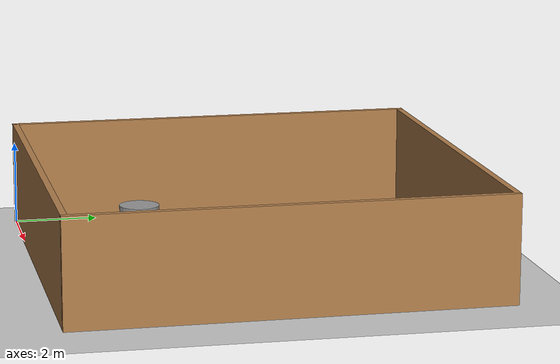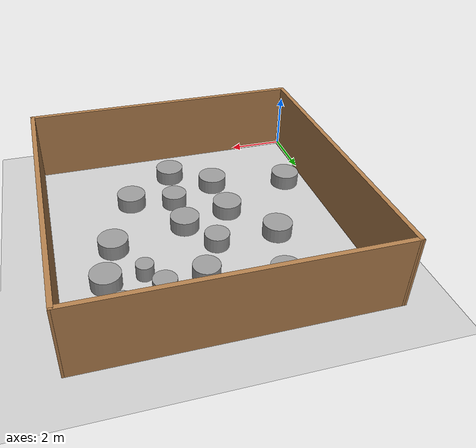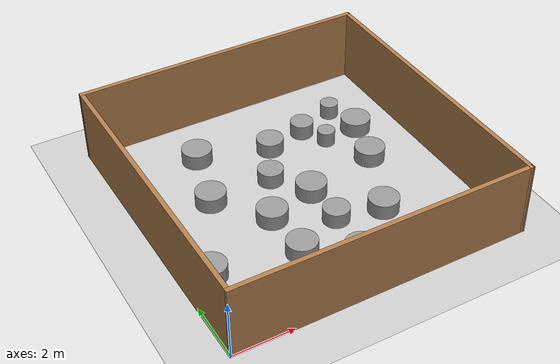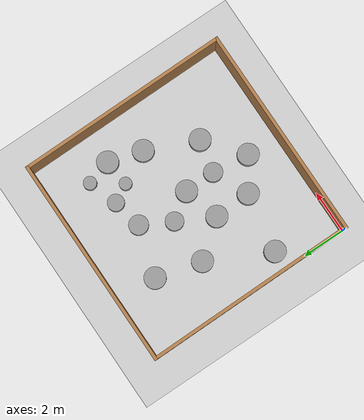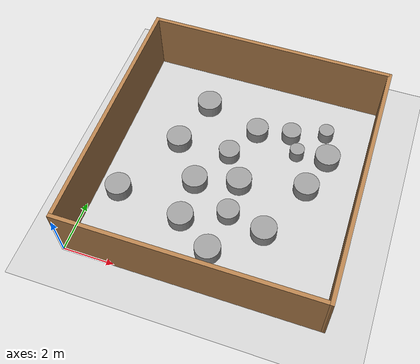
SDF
<sdf version="1.6">
 <world name="default">
  <light name="sun" type="directional">
   <pose>0 0 10 0 -0 0</pose>
   <diffuse>0.8 0.8 0.8 1</diffuse>
   <specular>0.2 0.2 0.2 1</specular>
   <attenuation>
    <range>1000</range>
    <constant>0.9</constant>
    <linear>0.01</linear>
    <quadratic>0.001</quadratic>
   </attenuation>
   <direction>-0.5 0.1 -0.9</direction>
  </light>
  <model name="ground_plane">
   <static>1</static>
   <link name="link">
    <collision name="collision">
     <geometry><plane><normal>0 0 1</normal><size>100 100</size></plane></geometry>
     <surface>
      <contact><collide_bitmask>65535</collide_bitmask></contact>
      <friction><ode><mu>100</mu><mu2>50</mu2></ode></friction>
     </surface>
    </collision>
    <visual name="visual">
     <cast_shadows>0</cast_shadows>
     <geometry><plane><normal>0 0 1</normal><size>100 100</size></plane></geometry>
     <material>
      <script><uri>file://media/materials/scripts/gazebo.material</uri><name>Gazebo/Grey</name></script>
     </material>
    </visual>
   </link>
  </model>
  <gravity>0 0 -9.8</gravity>
  <magnetic_field>6e-06 2.3e-05 -4.2e-05</magnetic_field>
  <atmosphere type="adiabatic"/>
  <physics name="default_physics" default="0" type="ode">
   <max_step_size>0.001</max_step_size>
   <real_time_factor>1</real_time_factor>
   <real_time_update_rate>1000</real_time_update_rate>
  </physics>
  <scene><ambient>0.4 0.4 0.4 1</ambient><background>0.7 0.7 0.7 1</background><shadows>1</shadows></scene>
  <audio><device>default</device></audio>
  <spherical_coordinates>
   <surface_model>EARTH_WGS84</surface_model>
   <latitude_deg>0</latitude_deg>
   <longitude_deg>0</longitude_deg>
   <elevation>0</elevation>
   <heading_deg>0</heading_deg>
  </spherical_coordinates>
  <model name="my_wall_01">
   <link name="Wall_0">
    <pose>0.034695 -4.92526 -0 0 0 -3.13923</pose>
    <visual name="Wall_0_Visual">
     <pose>0 0 1.25 0 -0 0</pose>
     <geometry><box><size>9.95377 0.15 2.5</size></box></geometry>
     <material>
      <script><uri>file://media/materials/scripts/gazebo.material</uri><name>Gazebo/Wood</name></script>
      <ambient>1 1 1 1</ambient>
     </material>
    </visual>
    <collision name="Wall_0_Collision">
     <pose>0 0 1.25 0 -0 0</pose>
     <geometry><box><size>9.95377 0.15 2.5</size></box></geometry>
     <surface>
      <friction>
       <ode><mu>1</mu><mu2>1</mu2><fdir1>0 0 0</fdir1><slip1>0</slip1><slip2>0</slip2></ode>
       <torsional>
        <coefficient>1</coefficient>
        <patch_radius>0</patch_radius>
        <surface_radius>0</surface_radius>
        <use_patch_radius>1</use_patch_radius>
        <ode><slip>0</slip></ode>
       </torsional>
      </friction>
      <bounce><restitution_coefficient>0</restitution_coefficient><threshold>1e+06</threshold></bounce>
      <contact>
       <collide_without_contact>0</collide_without_contact>
       <collide_without_contact_bitmask>1</collide_without_contact_bitmask>
       <collide_bitmask>1</collide_bitmask>
       <ode>
        <soft_cfm>0</soft_cfm>
        <soft_erp>0.2</soft_erp>
        <kp>1e+13</kp>
        <kd>1</kd>
        <max_vel>0.01</max_vel>
        <min_depth>0</min_depth>
       </ode>
       <bullet>
        <split_impulse>1</split_impulse>
        <split_impulse_penetration_threshold>-0.01</split_impulse_penetration_threshold>
        <soft_cfm>0</soft_cfm>
        <soft_erp>0.2</soft_erp>
        <kp>1e+13</kp>
        <kd>1</kd>
       </bullet>
      </contact>
     </surface>
    </collision>
   </link>
   <link name="Wall_1">
    <pose>-4.91343 0.011303 0 0 -0 1.58019</pose>
    <visual name="Wall_1_Visual">
     <pose>0 0 1.25 0 -0 0</pose>
     <geometry><box><size>10.0004 0.15 2.5</size></box></geometry>
     <material>
      <script><uri>file://media/materials/scripts/gazebo.material</uri><name>Gazebo/Wood</name></script>
      <ambient>1 1 1 1</ambient>
     </material>
    </visual>
    <collision name="Wall_1_Collision">
     <pose>0 0 1.25 0 -0 0</pose>
     <geometry><box><size>10.0004 0.15 2.5</size></box></geometry>
     <surface>
      <friction>
       <ode><mu>1</mu><mu2>1</mu2><fdir1>0 0 0</fdir1><slip1>0</slip1><slip2>0</slip2></ode>
       <torsional>
        <coefficient>1</coefficient>
        <patch_radius>0</patch_radius>
        <surface_radius>0</surface_radius>
        <use_patch_radius>1</use_patch_radius>
        <ode><slip>0</slip></ode>
       </torsional>
      </friction>
      <bounce><restitution_coefficient>0</restitution_coefficient><threshold>1e+06</threshold></bounce>
      <contact>
       <collide_without_contact>0</collide_without_contact>
       <collide_without_contact_bitmask>1</collide_without_contact_bitmask>
       <collide_bitmask>1</collide_bitmask>
       <ode>
        <soft_cfm>0</soft_cfm>
        <soft_erp>0.2</soft_erp>
        <kp>1e+13</kp>
        <kd>1</kd>
        <max_vel>0.01</max_vel>
        <min_depth>0</min_depth>
       </ode>
       <bullet>
        <split_impulse>1</split_impulse>
        <split_impulse_penetration_threshold>-0.01</split_impulse_penetration_threshold>
        <soft_cfm>0</soft_cfm>
        <soft_erp>0.2</soft_erp>
        <kp>1e+13</kp>
        <kd>1</kd>
       </bullet>
      </contact>
     </surface>
    </collision>
   </link>
   <link name="Wall_2">
    <pose>-0.057827 4.9363 0 0 -0 0</pose>
    <visual name="Wall_2_Visual">
     <pose>0 0 1.25 0 -0 0</pose>
     <geometry><box><size>9.95374 0.15 2.5</size></box></geometry>
     <material>
      <script><uri>file://media/materials/scripts/gazebo.material</uri><name>Gazebo/Wood</name></script>
      <ambient>1 1 1 1</ambient>
     </material>
    </visual>
    <collision name="Wall_2_Collision">
     <pose>0 0 1.25 0 -0 0</pose>
     <geometry><box><size>9.95374 0.15 2.5</size></box></geometry>
     <surface>
      <friction>
       <ode><mu>1</mu><mu2>1</mu2><fdir1>0 0 0</fdir1><slip1>0</slip1><slip2>0</slip2></ode>
       <torsional>
        <coefficient>1</coefficient>
        <patch_radius>0</patch_radius>
        <surface_radius>0</surface_radius>
        <use_patch_radius>1</use_patch_radius>
        <ode><slip>0</slip></ode>
       </torsional>
      </friction>
      <bounce><restitution_coefficient>0</restitution_coefficient><threshold>1e+06</threshold></bounce>
      <contact>
       <collide_without_contact>0</collide_without_contact>
       <collide_without_contact_bitmask>1</collide_without_contact_bitmask>
       <collide_bitmask>1</collide_bitmask>
       <ode>
        <soft_cfm>0</soft_cfm>
        <soft_erp>0.2</soft_erp>
        <kp>1e+13</kp>
        <kd>1</kd>
        <max_vel>0.01</max_vel>
        <min_depth>0</min_depth>
       </ode>
       <bullet>
        <split_impulse>1</split_impulse>
        <split_impulse_penetration_threshold>-0.01</split_impulse_penetration_threshold>
        <soft_cfm>0</soft_cfm>
        <soft_erp>0.2</soft_erp>
        <kp>1e+13</kp>
        <kd>1</kd>
       </bullet>
      </contact>
     </surface>
    </collision>
   </link>
   <link name="Wall_3">
    <pose>4.91343 0.011303 -0 0 0 -1.5614</pose>
    <visual name="Wall_3_Visual">
     <pose>0 0 1.25 0 -0 0</pose>
     <geometry><box><size>10.0004 0.15 2.5</size></box></geometry>
     <material>
      <script><uri>file://media/materials/scripts/gazebo.material</uri><name>Gazebo/Wood</name></script>
      <ambient>1 1 1 1</ambient>
     </material>
    </visual>
    <collision name="Wall_3_Collision">
     <pose>0 0 1.25 0 -0 0</pose>
     <geometry><box><size>10.0004 0.15 2.5</size></box></geometry>
     <surface>
      <friction>
       <ode><mu>1</mu><mu2>1</mu2><fdir1>0 0 0</fdir1><slip1>0</slip1><slip2>0</slip2></ode>
       <torsional>
        <coefficient>1</coefficient>
        <patch_radius>0</patch_radius>
        <surface_radius>0</surface_radius>
        <use_patch_radius>1</use_patch_radius>
        <ode><slip>0</slip></ode>
       </torsional>
      </friction>
      <bounce><restitution_coefficient>0</restitution_coefficient><threshold>1e+06</threshold></bounce>
      <contact>
       <collide_without_contact>0</collide_without_contact>
       <collide_without_contact_bitmask>1</collide_without_contact_bitmask>
       <collide_bitmask>1</collide_bitmask>
       <ode>
        <soft_cfm>0</soft_cfm>
        <soft_erp>0.2</soft_erp>
        <kp>1e+13</kp>
        <kd>1</kd>
        <max_vel>0.01</max_vel>
        <min_depth>0</min_depth>
       </ode>
       <bullet>
        <split_impulse>1</split_impulse>
        <split_impulse_penetration_threshold>-0.01</split_impulse_penetration_threshold>
        <soft_cfm>0</soft_cfm>
        <soft_erp>0.2</soft_erp>
        <kp>1e+13</kp>
        <kd>1</kd>
       </bullet>
      </contact>
     </surface>
    </collision>
   </link>
   <static>1</static>
   <pose>4.9027 4.97293 0 0 -0 0</pose>
  </model>
  <model name="unit_cylinder">
   <link name="link">
    <inertial>
     <mass>1</mass>
     <inertia><ixx>0.145833</ixx><ixy>0</ixy><ixz>0</ixz><iyy>0.145833</iyy><iyz>0</iyz><izz>0.125</izz></inertia>
    </inertial>
    <visual name="visual">
     <geometry><cylinder><radius>0.5</radius><length>1</length></cylinder></geometry>
     <material>
      <script><name>Gazebo/Grey</name><uri>file://media/materials/scripts/gazebo.material</uri></script>
     </material>
    </visual>
    <collision name="collision">
     <geometry><cylinder><radius>0.5</radius><length>1</length></cylinder></geometry>
     <surface>
      <friction>
       <ode><mu>1</mu><mu2>1</mu2><fdir1>0 0 0</fdir1><slip1>0</slip1><slip2>0</slip2></ode>
       <torsional>
        <coefficient>1</coefficient>
        <patch_radius>0</patch_radius>
        <surface_radius>0</surface_radius>
        <use_patch_radius>1</use_patch_radius>
        <ode><slip>0</slip></ode>
       </torsional>
      </friction>
      <bounce><restitution_coefficient>0</restitution_coefficient><threshold>1e+06</threshold></bounce>
      <contact>
       <collide_without_contact>0</collide_without_contact>
       <collide_without_contact_bitmask>1</collide_without_contact_bitmask>
       <collide_bitmask>1</collide_bitmask>
       <ode>
        <soft_cfm>0</soft_cfm>
        <soft_erp>0.2</soft_erp>
        <kp>1e+13</kp>
        <kd>1</kd>
        <max_vel>0.01</max_vel>
        <min_depth>0</min_depth>
       </ode>
       <bullet>
        <split_impulse>1</split_impulse>
        <split_impulse_penetration_threshold>-0.01</split_impulse_penetration_threshold>
        <soft_cfm>0</soft_cfm>
        <soft_erp>0.2</soft_erp>
        <kp>1e+13</kp>
        <kd>1</kd>
       </bullet>
      </contact>
     </surface>
    </collision>
   </link>
   <static>1</static>
   <pose>2.32469 5.86253 0 0 -0 0</pose>
  </model>
  <model name="unit_cylinder_0">
   <link name="link">
    <inertial>
     <mass>1</mass>
     <inertia><ixx>0.145833</ixx><ixy>0</ixy><ixz>0</ixz><iyy>0.145833</iyy><iyz>0</iyz><izz>0.125</izz></inertia>
    </inertial>
    <visual name="visual">
     <geometry><cylinder><radius>0.5</radius><length>1</length></cylinder></geometry>
     <material>
      <script><name>Gazebo/Grey</name><uri>file://media/materials/scripts/gazebo.material</uri></script>
     </material>
    </visual>
    <collision name="collision">
     <geometry><cylinder><radius>0.5</radius><length>1</length></cylinder></geometry>
     <surface>
      <friction>
       <ode><mu>1</mu><mu2>1</mu2><fdir1>0 0 0</fdir1><slip1>0</slip1><slip2>0</slip2></ode>
       <torsional>
        <coefficient>1</coefficient>
        <patch_radius>0</patch_radius>
        <surface_radius>0</surface_radius>
        <use_patch_radius>1</use_patch_radius>
        <ode><slip>0</slip></ode>
       </torsional>
      </friction>
      <bounce><restitution_coefficient>0</restitution_coefficient><threshold>1e+06</threshold></bounce>
      <contact>
       <collide_without_contact>0</collide_without_contact>
       <collide_without_contact_bitmask>1</collide_without_contact_bitmask>
       <collide_bitmask>1</collide_bitmask>
       <ode>
        <soft_cfm>0</soft_cfm>
        <soft_erp>0.2</soft_erp>
        <kp>1e+13</kp>
        <kd>1</kd>
        <max_vel>0.01</max_vel>
        <min_depth>0</min_depth>
       </ode>
       <bullet>
        <split_impulse>1</split_impulse>
        <split_impulse_penetration_threshold>-0.01</split_impulse_penetration_threshold>
        <soft_cfm>0</soft_cfm>
        <soft_erp>0.2</soft_erp>
        <kp>1e+13</kp>
        <kd>1</kd>
       </bullet>
      </contact>
     </surface>
    </collision>
   </link>
   <static>1</static>
   <pose>0.904971 2.98388 0 0 -0 0</pose>
  </model>
  <model name="unit_cylinder_1_clone_0">
   <link name="link">
    <inertial>
     <mass>1</mass>
     <inertia><ixx>0.145833</ixx><ixy>0</ixy><ixz>0</ixz><iyy>0.145833</iyy><iyz>0</iyz><izz>0.125</izz></inertia>
    </inertial>
    <visual name="visual">
     <geometry><cylinder><radius>0.386715</radius><length>1</length></cylinder></geometry>
     <material>
      <script><name>Gazebo/Grey</name><uri>file://media/materials/scripts/gazebo.material</uri></script>
     </material>
    </visual>
    <collision name="collision">
     <geometry><cylinder><radius>0.386715</radius><length>1</length></cylinder></geometry>
     <surface>
      <friction>
       <ode><mu>1</mu><mu2>1</mu2><fdir1>0 0 0</fdir1><slip1>0</slip1><slip2>0</slip2></ode>
       <torsional>
        <coefficient>1</coefficient>
        <patch_radius>0</patch_radius>
        <surface_radius>0</surface_radius>
        <use_patch_radius>1</use_patch_radius>
        <ode><slip>0</slip></ode>
       </torsional>
      </friction>
      <bounce><restitution_coefficient>0</restitution_coefficient><threshold>1e+06</threshold></bounce>
      <contact>
       <collide_without_contact>0</collide_without_contact>
       <collide_without_contact_bitmask>1</collide_without_contact_bitmask>
       <collide_bitmask>1</collide_bitmask>
       <ode>
        <soft_cfm>0</soft_cfm>
        <soft_erp>0.2</soft_erp>
        <kp>1e+13</kp>
        <kd>1</kd>
        <max_vel>0.01</max_vel>
        <min_depth>0</min_depth>
       </ode>
       <bullet>
        <split_impulse>1</split_impulse>
        <split_impulse_penetration_threshold>-0.01</split_impulse_penetration_threshold>
        <soft_cfm>0</soft_cfm>
        <soft_erp>0.2</soft_erp>
        <kp>1e+13</kp>
        <kd>1</kd>
       </bullet>
      </contact>
     </surface>
    </collision>
   </link>
   <static>1</static>
   <pose>6.58013 7.57817 0 0 -0 0</pose>
  </model>
  <model name="unit_cylinder_1_clone_1">
   <link name="link">
    <inertial>
     <mass>1</mass>
     <inertia><ixx>0.145833</ixx><ixy>0</ixy><ixz>0</ixz><iyy>0.145833</iyy><iyz>0</iyz><izz>0.125</izz></inertia>
    </inertial>
    <visual name="visual">
     <geometry><cylinder><radius>0.292062</radius><length>1</length></cylinder></geometry>
     <material>
      <script><name>Gazebo/Grey</name><uri>file://media/materials/scripts/gazebo.material</uri></script>
     </material>
    </visual>
    <collision name="collision">
     <geometry><cylinder><radius>0.292062</radius><length>1</length></cylinder></geometry>
     <surface>
      <friction>
       <ode><mu>1</mu><mu2>1</mu2><fdir1>0 0 0</fdir1><slip1>0</slip1><slip2>0</slip2></ode>
       <torsional>
        <coefficient>1</coefficient>
        <patch_radius>0</patch_radius>
        <surface_radius>0</surface_radius>
        <use_patch_radius>1</use_patch_radius>
        <ode><slip>0</slip></ode>
       </torsional>
      </friction>
      <bounce><restitution_coefficient>0</restitution_coefficient><threshold>1e+06</threshold></bounce>
      <contact>
       <collide_without_contact>0</collide_without_contact>
       <collide_without_contact_bitmask>1</collide_without_contact_bitmask>
       <collide_bitmask>1</collide_bitmask>
       <ode>
        <soft_cfm>0</soft_cfm>
        <soft_erp>0.2</soft_erp>
        <kp>1e+13</kp>
        <kd>1</kd>
        <max_vel>0.01</max_vel>
        <min_depth>0</min_depth>
       </ode>
       <bullet>
        <split_impulse>1</split_impulse>
        <split_impulse_penetration_threshold>-0.01</split_impulse_penetration_threshold>
        <soft_cfm>0</soft_cfm>
        <soft_erp>0.2</soft_erp>
        <kp>1e+13</kp>
        <kd>1</kd>
       </bullet>
      </contact>
     </surface>
    </collision>
   </link>
   <static>1</static>
   <pose>7.04399 6.75718 0 0 -0 0</pose>
  </model>
  <model name="unit_cylinder_1_clone_4">
   <link name="link">
    <inertial>
     <mass>1</mass>
     <inertia><ixx>0.145833</ixx><ixy>0</ixy><ixz>0</ixz><iyy>0.145833</iyy><iyz>0</iyz><izz>0.125</izz></inertia>
    </inertial>
    <visual name="visual">
     <geometry><cylinder><radius>0.435367</radius><length>1</length></cylinder></geometry>
     <material>
      <script><name>Gazebo/Grey</name><uri>file://media/materials/scripts/gazebo.material</uri></script>
     </material>
    </visual>
    <collision name="collision">
     <geometry><cylinder><radius>0.435367</radius><length>1</length></cylinder></geometry>
     <surface>
      <friction>
       <ode><mu>1</mu><mu2>1</mu2><fdir1>0 0 0</fdir1><slip1>0</slip1><slip2>0</slip2></ode>
       <torsional>
        <coefficient>1</coefficient>
        <patch_radius>0</patch_radius>
        <surface_radius>0</surface_radius>
        <use_patch_radius>1</use_patch_radius>
        <ode><slip>0</slip></ode>
       </torsional>
      </friction>
      <bounce><restitution_coefficient>0</restitution_coefficient><threshold>1e+06</threshold></bounce>
      <contact>
       <collide_without_contact>0</collide_without_contact>
       <collide_without_contact_bitmask>1</collide_without_contact_bitmask>
       <collide_bitmask>1</collide_bitmask>
       <ode>
        <soft_cfm>0</soft_cfm>
        <soft_erp>0.2</soft_erp>
        <kp>1e+13</kp>
        <kd>1</kd>
        <max_vel>0.01</max_vel>
        <min_depth>0</min_depth>
       </ode>
       <bullet>
        <split_impulse>1</split_impulse>
        <split_impulse_penetration_threshold>-0.01</split_impulse_penetration_threshold>
        <soft_cfm>0</soft_cfm>
        <soft_erp>0.2</soft_erp>
        <kp>1e+13</kp>
        <kd>1</kd>
       </bullet>
      </contact>
     </surface>
    </collision>
   </link>
   <static>1</static>
   <pose>5.30732 3.28392 0 0 -0 0</pose>
  </model>
  <model name="unit_cylinder_1_clone_6">
   <link name="link">
    <inertial>
     <mass>1</mass>
     <inertia><ixx>0.145833</ixx><ixy>0</ixy><ixz>0</ixz><iyy>0.145833</iyy><iyz>0</iyz><izz>0.125</izz></inertia>
    </inertial>
    <visual name="visual">
     <geometry><cylinder><radius>0.305332</radius><length>1</length></cylinder></geometry>
     <material>
      <script><name>Gazebo/Grey</name><uri>file://media/materials/scripts/gazebo.material</uri></script>
     </material>
    </visual>
    <collision name="collision">
     <geometry><cylinder><radius>0.305332</radius><length>1</length></cylinder></geometry>
     <surface>
      <friction>
       <ode><mu>1</mu><mu2>1</mu2><fdir1>0 0 0</fdir1><slip1>0</slip1><slip2>0</slip2></ode>
       <torsional>
        <coefficient>1</coefficient>
        <patch_radius>0</patch_radius>
        <surface_radius>0</surface_radius>
        <use_patch_radius>1</use_patch_radius>
        <ode><slip>0</slip></ode>
       </torsional>
      </friction>
      <bounce><restitution_coefficient>0</restitution_coefficient><threshold>1e+06</threshold></bounce>
      <contact>
       <collide_without_contact>0</collide_without_contact>
       <collide_without_contact_bitmask>1</collide_without_contact_bitmask>
       <collide_bitmask>1</collide_bitmask>
       <ode>
        <soft_cfm>0</soft_cfm>
        <soft_erp>0.2</soft_erp>
        <kp>1e+13</kp>
        <kd>1</kd>
        <max_vel>0.01</max_vel>
        <min_depth>0</min_depth>
       </ode>
       <bullet>
        <split_impulse>1</split_impulse>
        <split_impulse_penetration_threshold>-0.01</split_impulse_penetration_threshold>
        <soft_cfm>0</soft_cfm>
        <soft_erp>0.2</soft_erp>
        <kp>1e+13</kp>
        <kd>1</kd>
       </bullet>
      </contact>
     </surface>
    </collision>
   </link>
   <static>1</static>
   <pose>7.93122 8.03848 0 0 -0 0</pose>
  </model>
  <model name="unit_cylinder_1_clone_7">
   <link name="link">
    <inertial>
     <mass>1</mass>
     <inertia><ixx>0.145833</ixx><ixy>0</ixy><ixz>0</ixz><iyy>0.145833</iyy><iyz>0</iyz><izz>0.125</izz></inertia>
    </inertial>
    <visual name="visual">
     <geometry><cylinder><radius>0.449015</radius><length>1</length></cylinder></geometry>
     <material>
      <script><name>Gazebo/Grey</name><uri>file://media/materials/scripts/gazebo.material</uri></script>
     </material>
    </visual>
    <collision name="collision">
     <geometry><cylinder><radius>0.449015</radius><length>1</length></cylinder></geometry>
     <surface>
      <friction>
       <ode><mu>1</mu><mu2>1</mu2><fdir1>0 0 0</fdir1><slip1>0</slip1><slip2>0</slip2></ode>
       <torsional>
        <coefficient>1</coefficient>
        <patch_radius>0</patch_radius>
        <surface_radius>0</surface_radius>
        <use_patch_radius>1</use_patch_radius>
        <ode><slip>0</slip></ode>
       </torsional>
      </friction>
      <bounce><restitution_coefficient>0</restitution_coefficient><threshold>1e+06</threshold></bounce>
      <contact>
       <collide_without_contact>0</collide_without_contact>
       <collide_without_contact_bitmask>1</collide_without_contact_bitmask>
       <collide_bitmask>1</collide_bitmask>
       <ode>
        <soft_cfm>0</soft_cfm>
        <soft_erp>0.2</soft_erp>
        <kp>1e+13</kp>
        <kd>1</kd>
        <max_vel>0.01</max_vel>
        <min_depth>0</min_depth>
       </ode>
       <bullet>
        <split_impulse>1</split_impulse>
        <split_impulse_penetration_threshold>-0.01</split_impulse_penetration_threshold>
        <soft_cfm>0</soft_cfm>
        <soft_erp>0.2</soft_erp>
        <kp>1e+13</kp>
        <kd>1</kd>
       </bullet>
      </contact>
     </surface>
    </collision>
   </link>
   <static>1</static>
   <pose>5.2096 7.29748 0 0 -0 0</pose>
  </model>
  <model name="unit_cylinder_1_clone_9">
   <link name="link">
    <inertial>
     <mass>1</mass>
     <inertia><ixx>0.145833</ixx><ixy>0</ixy><ixz>0</ixz><iyy>0.145833</iyy><iyz>0</iyz><izz>0.125</izz></inertia>
    </inertial>
    <visual name="visual">
     <geometry><cylinder><radius>0.420918</radius><length>1</length></cylinder></geometry>
     <material>
      <script><name>Gazebo/Grey</name><uri>file://media/materials/scripts/gazebo.material</uri></script>
     </material>
    </visual>
    <collision name="collision">
     <geometry><cylinder><radius>0.420918</radius><length>1</length></cylinder></geometry>
     <surface>
      <friction>
       <ode><mu>1</mu><mu2>1</mu2><fdir1>0 0 0</fdir1><slip1>0</slip1><slip2>0</slip2></ode>
       <torsional>
        <coefficient>1</coefficient>
        <patch_radius>0</patch_radius>
        <surface_radius>0</surface_radius>
        <use_patch_radius>1</use_patch_radius>
        <ode><slip>0</slip></ode>
       </torsional>
      </friction>
      <bounce><restitution_coefficient>0</restitution_coefficient><threshold>1e+06</threshold></bounce>
      <contact>
       <collide_without_contact>0</collide_without_contact>
       <collide_without_contact_bitmask>1</collide_without_contact_bitmask>
       <collide_bitmask>1</collide_bitmask>
       <ode>
        <soft_cfm>0</soft_cfm>
        <soft_erp>0.2</soft_erp>
        <kp>1e+13</kp>
        <kd>1</kd>
        <max_vel>0.01</max_vel>
        <min_depth>0</min_depth>
       </ode>
       <bullet>
        <split_impulse>1</split_impulse>
        <split_impulse_penetration_threshold>-0.01</split_impulse_penetration_threshold>
        <soft_cfm>0</soft_cfm>
        <soft_erp>0.2</soft_erp>
        <kp>1e+13</kp>
        <kd>1</kd>
       </bullet>
      </contact>
     </surface>
    </collision>
   </link>
   <static>1</static>
   <pose>4.46363 5.90244 0 0 -0 0</pose>
  </model>
  <model name="unit_cylinder_clone">
   <link name="link">
    <inertial>
     <mass>1</mass>
     <inertia><ixx>0.145833</ixx><ixy>0</ixy><ixz>0</ixz><iyy>0.145833</iyy><iyz>0</iyz><izz>0.125</izz></inertia>
    </inertial>
    <visual name="visual">
     <geometry><cylinder><radius>0.5</radius><length>1</length></cylinder></geometry>
     <material>
      <script><name>Gazebo/Grey</name><uri>file://media/materials/scripts/gazebo.material</uri></script>
     </material>
    </visual>
    <collision name="collision">
     <geometry><cylinder><radius>0.5</radius><length>1</length></cylinder></geometry>
     <surface>
      <friction>
       <ode><mu>1</mu><mu2>1</mu2><fdir1>0 0 0</fdir1><slip1>0</slip1><slip2>0</slip2></ode>
       <torsional>
        <coefficient>1</coefficient>
        <patch_radius>0</patch_radius>
        <surface_radius>0</surface_radius>
        <use_patch_radius>1</use_patch_radius>
        <ode><slip>0</slip></ode>
       </torsional>
      </friction>
      <bounce><restitution_coefficient>0</restitution_coefficient><threshold>1e+06</threshold></bounce>
      <contact>
       <collide_without_contact>0</collide_without_contact>
       <collide_without_contact_bitmask>1</collide_without_contact_bitmask>
       <collide_bitmask>1</collide_bitmask>
       <ode>
        <soft_cfm>0</soft_cfm>
        <soft_erp>0.2</soft_erp>
        <kp>1e+13</kp>
        <kd>1</kd>
        <max_vel>0.01</max_vel>
        <min_depth>0</min_depth>
       </ode>
       <bullet>
        <split_impulse>1</split_impulse>
        <split_impulse_penetration_threshold>-0.01</split_impulse_penetration_threshold>
        <soft_cfm>0</soft_cfm>
        <soft_erp>0.2</soft_erp>
        <kp>1e+13</kp>
        <kd>1</kd>
       </bullet>
      </contact>
     </surface>
    </collision>
   </link>
   <static>1</static>
   <pose>7.81987 5.3036 0 0 -0 0</pose>
  </model>
  <model name="unit_cylinder_clone_0">
   <link name="link">
    <inertial>
     <mass>1</mass>
     <inertia><ixx>0.145833</ixx><ixy>0</ixy><ixz>0</ixz><iyy>0.145833</iyy><iyz>0</iyz><izz>0.125</izz></inertia>
    </inertial>
    <visual name="visual">
     <geometry><cylinder><radius>0.5</radius><length>1</length></cylinder></geometry>
     <material>
      <script><name>Gazebo/Grey</name><uri>file://media/materials/scripts/gazebo.material</uri></script>
     </material>
    </visual>
    <collision name="collision">
     <geometry><cylinder><radius>0.5</radius><length>1</length></cylinder></geometry>
     <surface>
      <friction>
       <ode><mu>1</mu><mu2>1</mu2><fdir1>0 0 0</fdir1><slip1>0</slip1><slip2>0</slip2></ode>
       <torsional>
        <coefficient>1</coefficient>
        <patch_radius>0</patch_radius>
        <surface_radius>0</surface_radius>
        <use_patch_radius>1</use_patch_radius>
        <ode><slip>0</slip></ode>
       </torsional>
      </friction>
      <bounce><restitution_coefficient>0</restitution_coefficient><threshold>1e+06</threshold></bounce>
      <contact>
       <collide_without_contact>0</collide_without_contact>
       <collide_without_contact_bitmask>1</collide_without_contact_bitmask>
       <collide_bitmask>1</collide_bitmask>
       <ode>
        <soft_cfm>0</soft_cfm>
        <soft_erp>0.2</soft_erp>
        <kp>1e+13</kp>
        <kd>1</kd>
        <max_vel>0.01</max_vel>
        <min_depth>0</min_depth>
       </ode>
       <bullet>
        <split_impulse>1</split_impulse>
        <split_impulse_penetration_threshold>-0.01</split_impulse_penetration_threshold>
        <soft_cfm>0</soft_cfm>
        <soft_erp>0.2</soft_erp>
        <kp>1e+13</kp>
        <kd>1</kd>
       </bullet>
      </contact>
     </surface>
    </collision>
   </link>
   <static>1</static>
   <pose>8.27149 6.88147 0 0 -0 0</pose>
  </model>
  <model name="unit_cylinder_clone_1">
   <link name="link">
    <inertial>
     <mass>1</mass>
     <inertia><ixx>0.145833</ixx><ixy>0</ixy><ixz>0</ixz><iyy>0.145833</iyy><iyz>0</iyz><izz>0.125</izz></inertia>
    </inertial>
    <visual name="visual">
     <geometry><cylinder><radius>0.5</radius><length>1</length></cylinder></geometry>
     <material>
      <script><name>Gazebo/Grey</name><uri>file://media/materials/scripts/gazebo.material</uri></script>
     </material>
    </visual>
    <collision name="collision">
     <geometry><cylinder><radius>0.5</radius><length>1</length></cylinder></geometry>
     <surface>
      <friction>
       <ode><mu>1</mu><mu2>1</mu2><fdir1>0 0 0</fdir1><slip1>0</slip1><slip2>0</slip2></ode>
       <torsional>
        <coefficient>1</coefficient>
        <patch_radius>0</patch_radius>
        <surface_radius>0</surface_radius>
        <use_patch_radius>1</use_patch_radius>
        <ode><slip>0</slip></ode>
       </torsional>
      </friction>
      <bounce><restitution_coefficient>0</restitution_coefficient><threshold>1e+06</threshold></bounce>
      <contact>
       <collide_without_contact>0</collide_without_contact>
       <collide_without_contact_bitmask>1</collide_without_contact_bitmask>
       <collide_bitmask>1</collide_bitmask>
       <ode>
        <soft_cfm>0</soft_cfm>
        <soft_erp>0.2</soft_erp>
        <kp>1e+13</kp>
        <kd>1</kd>
        <max_vel>0.01</max_vel>
        <min_depth>0</min_depth>
       </ode>
       <bullet>
        <split_impulse>1</split_impulse>
        <split_impulse_penetration_threshold>-0.01</split_impulse_penetration_threshold>
        <soft_cfm>0</soft_cfm>
        <soft_erp>0.2</soft_erp>
        <kp>1e+13</kp>
        <kd>1</kd>
       </bullet>
      </contact>
     </surface>
    </collision>
   </link>
   <static>1</static>
   <pose>3.60377 4.23979 0 0 -0 0</pose>
  </model>
  <model name="unit_cylinder_clone_3">
   <link name="link">
    <inertial>
     <mass>1</mass>
     <inertia><ixx>0.145833</ixx><ixy>0</ixy><ixz>0</ixz><iyy>0.145833</iyy><iyz>0</iyz><izz>0.125</izz></inertia>
    </inertial>
    <visual name="visual">
     <geometry><cylinder><radius>0.5</radius><length>1</length></cylinder></geometry>
     <material>
      <script><name>Gazebo/Grey</name><uri>file://media/materials/scripts/gazebo.material</uri></script>
     </material>
    </visual>
    <collision name="collision">
     <geometry><cylinder><radius>0.5</radius><length>1</length></cylinder></geometry>
     <surface>
      <friction>
       <ode><mu>1</mu><mu2>1</mu2><fdir1>0 0 0</fdir1><slip1>0</slip1><slip2>0</slip2></ode>
       <torsional>
        <coefficient>1</coefficient>
        <patch_radius>0</patch_radius>
        <surface_radius>0</surface_radius>
        <use_patch_radius>1</use_patch_radius>
        <ode><slip>0</slip></ode>
       </torsional>
      </friction>
      <bounce><restitution_coefficient>0</restitution_coefficient><threshold>1e+06</threshold></bounce>
      <contact>
       <collide_without_contact>0</collide_without_contact>
       <collide_without_contact_bitmask>1</collide_without_contact_bitmask>
       <collide_bitmask>1</collide_bitmask>
       <ode>
        <soft_cfm>0</soft_cfm>
        <soft_erp>0.2</soft_erp>
        <kp>1e+13</kp>
        <kd>1</kd>
        <max_vel>0.01</max_vel>
        <min_depth>0</min_depth>
       </ode>
       <bullet>
        <split_impulse>1</split_impulse>
        <split_impulse_penetration_threshold>-0.01</split_impulse_penetration_threshold>
        <soft_cfm>0</soft_cfm>
        <soft_erp>0.2</soft_erp>
        <kp>1e+13</kp>
        <kd>1</kd>
       </bullet>
      </contact>
     </surface>
    </collision>
   </link>
   <static>1</static>
   <pose>5.09778 1.56509 0 0 -0 0</pose>
  </model>
  <model name="unit_cylinder_clone_4">
   <link name="link">
    <inertial>
     <mass>1</mass>
     <inertia><ixx>0.145833</ixx><ixy>0</ixy><ixz>0</ixz><iyy>0.145833</iyy><iyz>0</iyz><izz>0.125</izz></inertia>
    </inertial>
    <visual name="visual">
     <geometry><cylinder><radius>0.5</radius><length>1</length></cylinder></geometry>
     <material>
      <script><name>Gazebo/Grey</name><uri>file://media/materials/scripts/gazebo.material</uri></script>
     </material>
    </visual>
    <collision name="collision">
     <geometry><cylinder><radius>0.5</radius><length>1</length></cylinder></geometry>
     <surface>
      <friction>
       <ode><mu>1</mu><mu2>1</mu2><fdir1>0 0 0</fdir1><slip1>0</slip1><slip2>0</slip2></ode>
       <torsional>
        <coefficient>1</coefficient>
        <patch_radius>0</patch_radius>
        <surface_radius>0</surface_radius>
        <use_patch_radius>1</use_patch_radius>
        <ode><slip>0</slip></ode>
       </torsional>
      </friction>
      <bounce><restitution_coefficient>0</restitution_coefficient><threshold>1e+06</threshold></bounce>
      <contact>
       <collide_without_contact>0</collide_without_contact>
       <collide_without_contact_bitmask>1</collide_without_contact_bitmask>
       <collide_bitmask>1</collide_bitmask>
       <ode>
        <soft_cfm>0</soft_cfm>
        <soft_erp>0.2</soft_erp>
        <kp>1e+13</kp>
        <kd>1</kd>
        <max_vel>0.01</max_vel>
        <min_depth>0</min_depth>
       </ode>
       <bullet>
        <split_impulse>1</split_impulse>
        <split_impulse_penetration_threshold>-0.01</split_impulse_penetration_threshold>
        <soft_cfm>0</soft_cfm>
        <soft_erp>0.2</soft_erp>
        <kp>1e+13</kp>
        <kd>1</kd>
       </bullet>
      </contact>
     </surface>
    </collision>
   </link>
   <static>1</static>
   <pose>6.81765 2.95724 0 0 -0 0</pose>
  </model>
  <model name="unit_cylinder_clone_5">
   <link name="link">
    <inertial>
     <mass>1</mass>
     <inertia><ixx>0.145833</ixx><ixy>0</ixy><ixz>0</ixz><iyy>0.145833</iyy><iyz>0</iyz><izz>0.125</izz></inertia>
    </inertial>
    <visual name="visual">
     <geometry><cylinder><radius>0.5</radius><length>1</length></cylinder></geometry>
     <material>
      <script><name>Gazebo/Grey</name><uri>file://media/materials/scripts/gazebo.material</uri></script>
     </material>
    </visual>
    <collision name="collision">
     <geometry><cylinder><radius>0.5</radius><length>1</length></cylinder></geometry>
     <surface>
      <friction>
       <ode><mu>1</mu><mu2>1</mu2><fdir1>0 0 0</fdir1><slip1>0</slip1><slip2>0</slip2></ode>
       <torsional>
        <coefficient>1</coefficient>
        <patch_radius>0</patch_radius>
        <surface_radius>0</surface_radius>
        <use_patch_radius>1</use_patch_radius>
        <ode><slip>0</slip></ode>
       </torsional>
      </friction>
      <bounce><restitution_coefficient>0</restitution_coefficient><threshold>1e+06</threshold></bounce>
      <contact>
       <collide_without_contact>0</collide_without_contact>
       <collide_without_contact_bitmask>1</collide_without_contact_bitmask>
       <collide_bitmask>1</collide_bitmask>
       <ode>
        <soft_cfm>0</soft_cfm>
        <soft_erp>0.2</soft_erp>
        <kp>1e+13</kp>
        <kd>1</kd>
        <max_vel>0.01</max_vel>
        <min_depth>0</min_depth>
       </ode>
       <bullet>
        <split_impulse>1</split_impulse>
        <split_impulse_penetration_threshold>-0.01</split_impulse_penetration_threshold>
        <soft_cfm>0</soft_cfm>
        <soft_erp>0.2</soft_erp>
        <kp>1e+13</kp>
        <kd>1</kd>
       </bullet>
      </contact>
     </surface>
    </collision>
   </link>
   <static>1</static>
   <pose>2.87793 7.99446 0 0 -0 0</pose>
  </model>
  <model name="unit_cylinder_clone_1_clone">
   <link name="link">
    <inertial>
     <mass>1</mass>
     <inertia><ixx>0.145833</ixx><ixy>0</ixy><ixz>0</ixz><iyy>0.145833</iyy><iyz>0</iyz><izz>0.125</izz></inertia>
    </inertial>
    <visual name="visual">
     <geometry><cylinder><radius>0.5</radius><length>1</length></cylinder></geometry>
     <material>
      <script><name>Gazebo/Grey</name><uri>file://media/materials/scripts/gazebo.material</uri></script>
     </material>
    </visual>
    <collision name="collision">
     <geometry><cylinder><radius>0.5</radius><length>1</length></cylinder></geometry>
     <surface>
      <friction>
       <ode><mu>1</mu><mu2>1</mu2><fdir1>0 0 0</fdir1><slip1>0</slip1><slip2>0</slip2></ode>
       <torsional>
        <coefficient>1</coefficient>
        <patch_radius>0</patch_radius>
        <surface_radius>0</surface_radius>
        <use_patch_radius>1</use_patch_radius>
        <ode><slip>0</slip></ode>
       </torsional>
      </friction>
      <bounce><restitution_coefficient>0</restitution_coefficient><threshold>1e+06</threshold></bounce>
      <contact>
       <collide_without_contact>0</collide_without_contact>
       <collide_without_contact_bitmask>1</collide_without_contact_bitmask>
       <collide_bitmask>1</collide_bitmask>
       <ode>
        <soft_cfm>0</soft_cfm>
        <soft_erp>0.2</soft_erp>
        <kp>1e+13</kp>
        <kd>1</kd>
        <max_vel>0.01</max_vel>
        <min_depth>0</min_depth>
       </ode>
       <bullet>
        <split_impulse>1</split_impulse>
        <split_impulse_penetration_threshold>-0.01</split_impulse_penetration_threshold>
        <soft_cfm>0</soft_cfm>
        <soft_erp>0.2</soft_erp>
        <kp>1e+13</kp>
        <kd>1</kd>
       </bullet>
      </contact>
     </surface>
    </collision>
   </link>
   <static>1</static>
   <pose>5.26766 4.71831 0 0 -0 0</pose>
  </model>
  <model name="unit_cylinder_clone_1_clone_0">
   <link name="link">
    <inertial>
     <mass>1</mass>
     <inertia><ixx>0.145833</ixx><ixy>0</ixy><ixz>0</ixz><iyy>0.145833</iyy><iyz>0</iyz><izz>0.125</izz></inertia>
    </inertial>
    <visual name="visual">
     <geometry><cylinder><radius>0.5</radius><length>1</length></cylinder></geometry>
     <material>
      <script><name>Gazebo/Grey</name><uri>file://media/materials/scripts/gazebo.material</uri></script>
     </material>
    </visual>
    <collision name="collision">
     <geometry><cylinder><radius>0.5</radius><length>1</length></cylinder></geometry>
     <surface>
      <friction>
       <ode><mu>1</mu><mu2>1</mu2><fdir1>0 0 0</fdir1><slip1>0</slip1><slip2>0</slip2></ode>
       <torsional>
        <coefficient>1</coefficient>
        <patch_radius>0</patch_radius>
        <surface_radius>0</surface_radius>
        <use_patch_radius>1</use_patch_radius>
        <ode><slip>0</slip></ode>
       </torsional>
      </friction>
      <bounce><restitution_coefficient>0</restitution_coefficient><threshold>1e+06</threshold></bounce>
      <contact>
       <collide_without_contact>0</collide_without_contact>
       <collide_without_contact_bitmask>1</collide_without_contact_bitmask>
       <collide_bitmask>1</collide_bitmask>
       <ode>
        <soft_cfm>0</soft_cfm>
        <soft_erp>0.2</soft_erp>
        <kp>1e+13</kp>
        <kd>1</kd>
        <max_vel>0.01</max_vel>
        <min_depth>0</min_depth>
       </ode>
       <bullet>
        <split_impulse>1</split_impulse>
        <split_impulse_penetration_threshold>-0.01</split_impulse_penetration_threshold>
        <soft_cfm>0</soft_cfm>
        <soft_erp>0.2</soft_erp>
        <kp>1e+13</kp>
        <kd>1</kd>
       </bullet>
      </contact>
     </surface>
    </collision>
   </link>
   <static>1</static>
   <pose>3.66462 2.53441 0 0 -0 0</pose>
  </model>
 </world>
</sdf>
